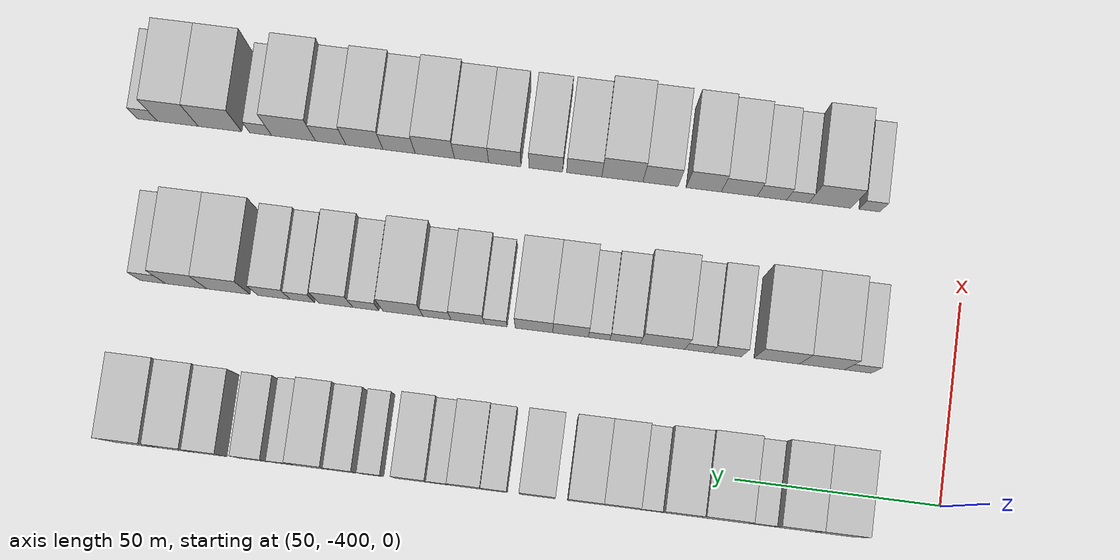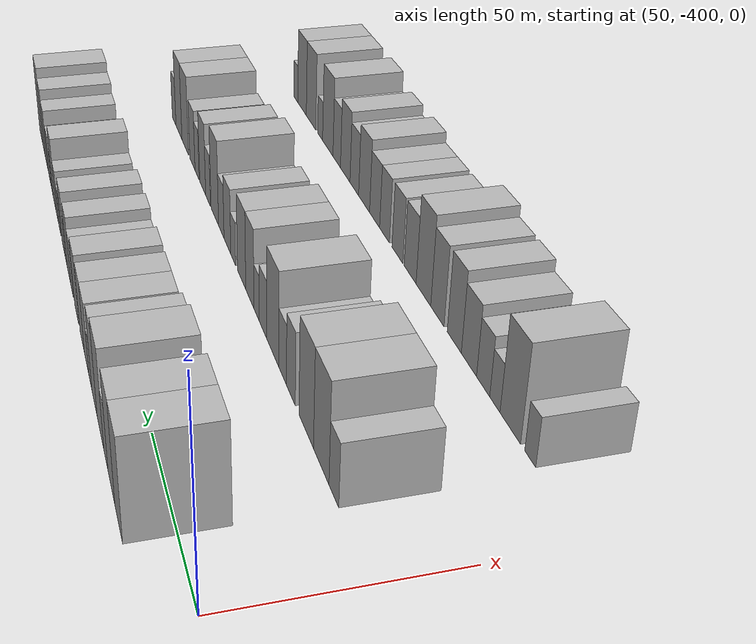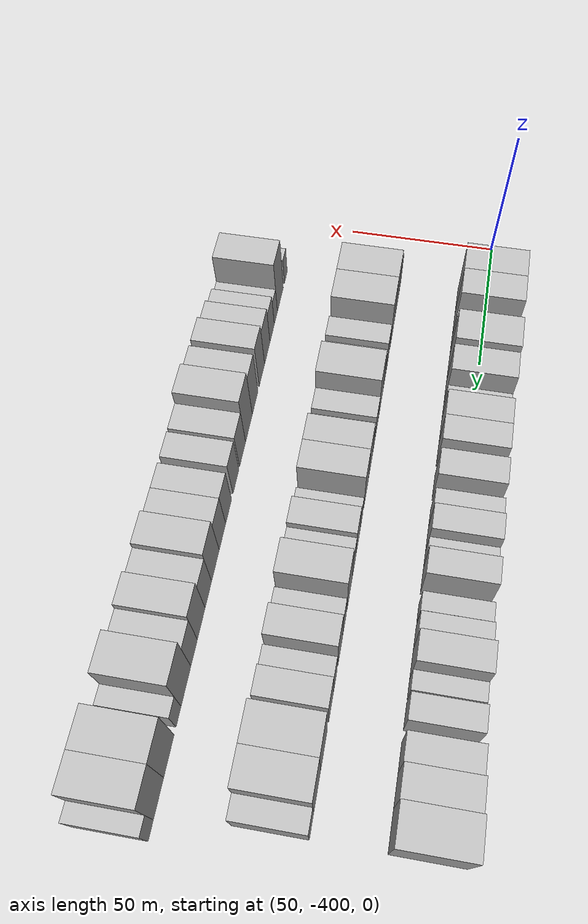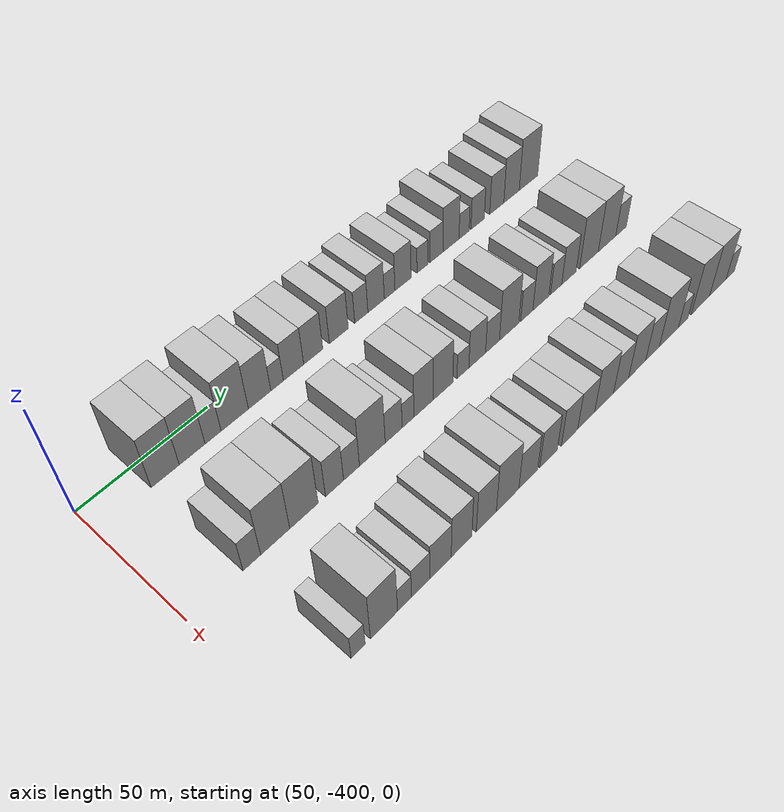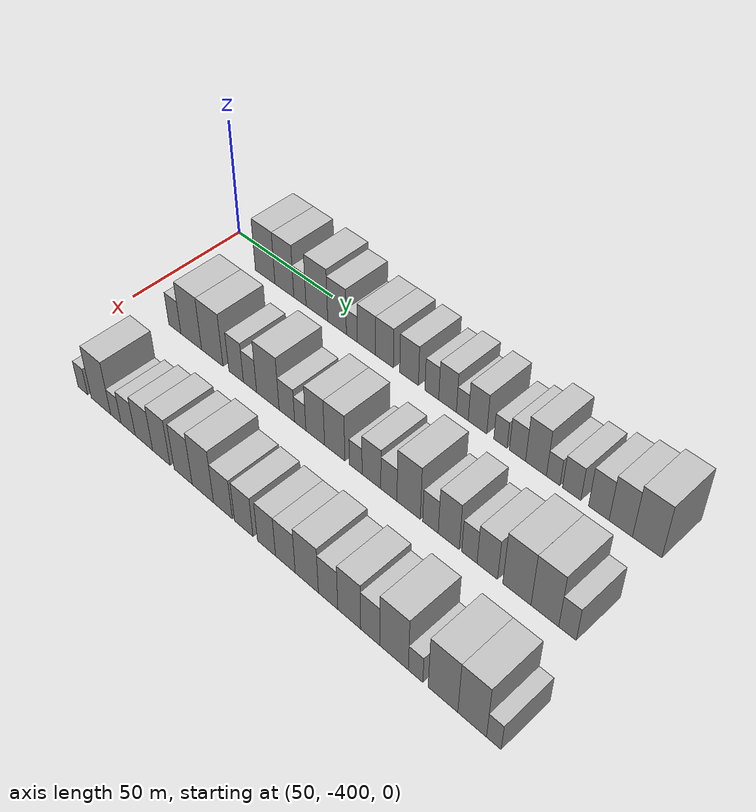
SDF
<sdf version="1.6">
 <world name="default">
  <model name="building_1">
   <static>1</static>
   <pose>50.0000 -374.7212 0 0.000000 0.000000 0.000000</pose>
   <link name="link">
    <pose>0 0 12.00 0 0 0</pose>
    <collision name="collision"><geometry><box><size>20.0000 10.5576 24.0000</size></box></geometry></collision>
    <visual name="visual">
     <cast_shadows>0</cast_shadows>
     <geometry><box><size>20.0000 10.5576 24.0000</size></box></geometry>
     <material>
      <script>
       <uri>model://HANNAS_wall/materials/scripts</uri>
       <uri>model://HANNAS_wall/materials/textures</uri>
       <name>vrc/HANNAS_wall</name>
      </script>
     </material>
    </visual>
   </link>
  </model>
  <model name="building_2">
   <static>1</static>
   <pose>50.0000 -364.4689 0 0.000000 0.000000 0.000000</pose>
   <link name="link">
    <pose>0 0 12.00 0 0 0</pose>
    <collision name="collision"><geometry><box><size>20.0000 9.9470 24.0000</size></box></geometry></collision>
    <visual name="visual">
     <cast_shadows>0</cast_shadows>
     <geometry><box><size>20.0000 9.9470 24.0000</size></box></geometry>
     <material>
      <script>
       <uri>model://HANNAS_wall/materials/scripts</uri>
       <uri>model://HANNAS_wall/materials/textures</uri>
       <name>vrc/HANNAS_wall</name>
      </script>
     </material>
    </visual>
   </link>
  </model>
  <model name="building_3">
   <static>1</static>
   <pose>50.0000 -356.3174 0 0.000000 0.000000 0.000000</pose>
   <link name="link">
    <pose>0 0 7.50 0 0 0</pose>
    <collision name="collision"><geometry><box><size>20.0000 6.3561 15.0000</size></box></geometry></collision>
    <visual name="visual">
     <cast_shadows>0</cast_shadows>
     <geometry><box><size>20.0000 6.3561 15.0000</size></box></geometry>
     <material>
      <script>
       <uri>model://HANNAS_wall/materials/scripts</uri>
       <uri>model://HANNAS_wall/materials/textures</uri>
       <name>vrc/HANNAS_wall</name>
      </script>
     </material>
    </visual>
   </link>
  </model>
  <model name="building_4">
   <static>1</static>
   <pose>50.0000 -347.6121 0 0.000000 0.000000 0.000000</pose>
   <link name="link">
    <pose>0 0 12.00 0 0 0</pose>
    <collision name="collision"><geometry><box><size>20.0000 11.0544 24.0000</size></box></geometry></collision>
    <visual name="visual">
     <cast_shadows>0</cast_shadows>
     <geometry><box><size>20.0000 11.0544 24.0000</size></box></geometry>
     <material>
      <script>
       <uri>model://HANNAS_wall/materials/scripts</uri>
       <uri>model://HANNAS_wall/materials/textures</uri>
       <name>vrc/HANNAS_wall</name>
      </script>
     </material>
    </visual>
   </link>
  </model>
  <model name="building_5">
   <static>1</static>
   <pose>50.0000 -337.4153 0 0.000000 0.000000 0.000000</pose>
   <link name="link">
    <pose>0 0 10.50 0 0 0</pose>
    <collision name="collision"><geometry><box><size>20.0000 9.3393 21.0000</size></box></geometry></collision>
    <visual name="visual">
     <cast_shadows>0</cast_shadows>
     <geometry><box><size>20.0000 9.3393 21.0000</size></box></geometry>
     <material>
      <script>
       <uri>model://HANNAS_wall/materials/scripts</uri>
       <uri>model://HANNAS_wall/materials/textures</uri>
       <name>vrc/HANNAS_wall</name>
      </script>
     </material>
    </visual>
   </link>
  </model>
  <model name="building_6">
   <static>1</static>
   <pose>50.0000 -330.0703 0 0.000000 0.000000 0.000000</pose>
   <link name="link">
    <pose>0 0 6.00 0 0 0</pose>
    <collision name="collision"><geometry><box><size>20.0000 5.3508 12.0000</size></box></geometry></collision>
    <visual name="visual">
     <cast_shadows>0</cast_shadows>
     <geometry><box><size>20.0000 5.3508 12.0000</size></box></geometry>
     <material>
      <script>
       <uri>model://HANNAS_wall/materials/scripts</uri>
       <uri>model://HANNAS_wall/materials/textures</uri>
       <name>vrc/HANNAS_wall</name>
      </script>
     </material>
    </visual>
   </link>
  </model>
  <model name="building_7">
   <static>1</static>
   <pose>50.0000 -323.0096 0 0.000000 0.000000 0.000000</pose>
   <link name="link">
    <pose>0 0 9.00 0 0 0</pose>
    <collision name="collision"><geometry><box><size>20.0000 8.7705 18.0000</size></box></geometry></collision>
    <visual name="visual">
     <cast_shadows>0</cast_shadows>
     <geometry><box><size>20.0000 8.7705 18.0000</size></box></geometry>
     <material>
      <script>
       <uri>model://HANNAS_wall/materials/scripts</uri>
       <uri>model://HANNAS_wall/materials/textures</uri>
       <name>vrc/HANNAS_wall</name>
      </script>
     </material>
    </visual>
   </link>
  </model>
  <model name="building_8">
   <static>1</static>
   <pose>50.0000 -314.3873 0 0.000000 0.000000 0.000000</pose>
   <link name="link">
    <pose>0 0 9.00 0 0 0</pose>
    <collision name="collision"><geometry><box><size>20.0000 8.4741 18.0000</size></box></geometry></collision>
    <visual name="visual">
     <cast_shadows>0</cast_shadows>
     <geometry><box><size>20.0000 8.4741 18.0000</size></box></geometry>
     <material>
      <script>
       <uri>model://HANNAS_wall/materials/scripts</uri>
       <uri>model://HANNAS_wall/materials/textures</uri>
       <name>vrc/HANNAS_wall</name>
      </script>
     </material>
    </visual>
   </link>
  </model>
  <model name="building_9">
   <static>1</static>
   <pose>50.0000 -302.8342 0 0.000000 0.000000 0.000000</pose>
   <link name="link">
    <pose>0 0 9.00 0 0 0</pose>
    <collision name="collision"><geometry><box><size>20.0000 8.6323 18.0000</size></box></geometry></collision>
    <visual name="visual">
     <cast_shadows>0</cast_shadows>
     <geometry><box><size>20.0000 8.6323 18.0000</size></box></geometry>
     <material>
      <script>
       <uri>model://HANNAS_wall/materials/scripts</uri>
       <uri>model://HANNAS_wall/materials/textures</uri>
       <name>vrc/HANNAS_wall</name>
      </script>
     </material>
    </visual>
   </link>
  </model>
  <model name="building_10">
   <static>1</static>
   <pose>50.0000 -292.4121 0 0.000000 0.000000 0.000000</pose>
   <link name="link">
    <pose>0 0 7.50 0 0 0</pose>
    <collision name="collision"><geometry><box><size>20.0000 6.2119 15.0000</size></box></geometry></collision>
    <visual name="visual">
     <cast_shadows>0</cast_shadows>
     <geometry><box><size>20.0000 6.2119 15.0000</size></box></geometry>
     <material>
      <script>
       <uri>model://HANNAS_wall/materials/scripts</uri>
       <uri>model://HANNAS_wall/materials/textures</uri>
       <name>vrc/HANNAS_wall</name>
      </script>
     </material>
    </visual>
   </link>
  </model>
  <model name="building_11">
   <static>1</static>
   <pose>50.0000 -285.3652 0 0.000000 0.000000 0.000000</pose>
   <link name="link">
    <pose>0 0 9.00 0 0 0</pose>
    <collision name="collision"><geometry><box><size>20.0000 7.8817 18.0000</size></box></geometry></collision>
    <visual name="visual">
     <cast_shadows>0</cast_shadows>
     <geometry><box><size>20.0000 7.8817 18.0000</size></box></geometry>
     <material>
      <script>
       <uri>model://HANNAS_wall/materials/scripts</uri>
       <uri>model://HANNAS_wall/materials/textures</uri>
       <name>vrc/HANNAS_wall</name>
      </script>
     </material>
    </visual>
   </link>
  </model>
  <model name="building_12">
   <static>1</static>
   <pose>50.0000 -278.8355 0 0.000000 0.000000 0.000000</pose>
   <link name="link">
    <pose>0 0 6.00 0 0 0</pose>
    <collision name="collision"><geometry><box><size>20.0000 5.1779 12.0000</size></box></geometry></collision>
    <visual name="visual">
     <cast_shadows>0</cast_shadows>
     <geometry><box><size>20.0000 5.1779 12.0000</size></box></geometry>
     <material>
      <script>
       <uri>model://HANNAS_wall/materials/scripts</uri>
       <uri>model://HANNAS_wall/materials/textures</uri>
       <name>vrc/HANNAS_wall</name>
      </script>
     </material>
    </visual>
   </link>
  </model>
  <model name="building_13">
   <static>1</static>
   <pose>50.0000 -272.2548 0 0.000000 0.000000 0.000000</pose>
   <link name="link">
    <pose>0 0 9.00 0 0 0</pose>
    <collision name="collision"><geometry><box><size>20.0000 7.9834 18.0000</size></box></geometry></collision>
    <visual name="visual">
     <cast_shadows>0</cast_shadows>
     <geometry><box><size>20.0000 7.9834 18.0000</size></box></geometry>
     <material>
      <script>
       <uri>model://HANNAS_wall/materials/scripts</uri>
       <uri>model://HANNAS_wall/materials/textures</uri>
       <name>vrc/HANNAS_wall</name>
      </script>
     </material>
    </visual>
   </link>
  </model>
  <model name="building_14">
   <static>1</static>
   <pose>50.0000 -262.4717 0 0.000000 0.000000 0.000000</pose>
   <link name="link">
    <pose>0 0 6.00 0 0 0</pose>
    <collision name="collision"><geometry><box><size>20.0000 5.5828 12.0000</size></box></geometry></collision>
    <visual name="visual">
     <cast_shadows>0</cast_shadows>
     <geometry><box><size>20.0000 5.5828 12.0000</size></box></geometry>
     <material>
      <script>
       <uri>model://HANNAS_wall/materials/scripts</uri>
       <uri>model://HANNAS_wall/materials/textures</uri>
       <name>vrc/HANNAS_wall</name>
      </script>
     </material>
    </visual>
   </link>
  </model>
  <model name="building_15">
   <static>1</static>
   <pose>50.0000 -255.3327 0 0.000000 0.000000 0.000000</pose>
   <link name="link">
    <pose>0 0 7.50 0 0 0</pose>
    <collision name="collision"><geometry><box><size>20.0000 6.6953 15.0000</size></box></geometry></collision>
    <visual name="visual">
     <cast_shadows>0</cast_shadows>
     <geometry><box><size>20.0000 6.6953 15.0000</size></box></geometry>
     <material>
      <script>
       <uri>model://HANNAS_wall/materials/scripts</uri>
       <uri>model://HANNAS_wall/materials/textures</uri>
       <name>vrc/HANNAS_wall</name>
      </script>
     </material>
    </visual>
   </link>
  </model>
  <model name="building_16">
   <static>1</static>
   <pose>50.0000 -247.7296 0 0.000000 0.000000 0.000000</pose>
   <link name="link">
    <pose>0 0 10.50 0 0 0</pose>
    <collision name="collision"><geometry><box><size>20.0000 8.5108 21.0000</size></box></geometry></collision>
    <visual name="visual">
     <cast_shadows>0</cast_shadows>
     <geometry><box><size>20.0000 8.5108 21.0000</size></box></geometry>
     <material>
      <script>
       <uri>model://HANNAS_wall/materials/scripts</uri>
       <uri>model://HANNAS_wall/materials/textures</uri>
       <name>vrc/HANNAS_wall</name>
      </script>
     </material>
    </visual>
   </link>
  </model>
  <model name="building_17">
   <static>1</static>
   <pose>50.0000 -240.7629 0 0.000000 0.000000 0.000000</pose>
   <link name="link">
    <pose>0 0 6.00 0 0 0</pose>
    <collision name="collision"><geometry><box><size>20.0000 5.4226 12.0000</size></box></geometry></collision>
    <visual name="visual">
     <cast_shadows>0</cast_shadows>
     <geometry><box><size>20.0000 5.4226 12.0000</size></box></geometry>
     <material>
      <script>
       <uri>model://HANNAS_wall/materials/scripts</uri>
       <uri>model://HANNAS_wall/materials/textures</uri>
       <name>vrc/HANNAS_wall</name>
      </script>
     </material>
    </visual>
   </link>
  </model>
  <model name="building_18">
   <static>1</static>
   <pose>50.0000 -233.4286 0 0.000000 0.000000 0.000000</pose>
   <link name="link">
    <pose>0 0 7.50 0 0 0</pose>
    <collision name="collision"><geometry><box><size>20.0000 7.2459 15.0000</size></box></geometry></collision>
    <visual name="visual">
     <cast_shadows>0</cast_shadows>
     <geometry><box><size>20.0000 7.2459 15.0000</size></box></geometry>
     <material>
      <script>
       <uri>model://HANNAS_wall/materials/scripts</uri>
       <uri>model://HANNAS_wall/materials/textures</uri>
       <name>vrc/HANNAS_wall</name>
      </script>
     </material>
    </visual>
   </link>
  </model>
  <model name="building_19">
   <static>1</static>
   <pose>50.0000 -222.8635 0 0.000000 0.000000 0.000000</pose>
   <link name="link">
    <pose>0 0 9.00 0 0 0</pose>
    <collision name="collision"><geometry><box><size>20.0000 7.8843 18.0000</size></box></geometry></collision>
    <visual name="visual">
     <cast_shadows>0</cast_shadows>
     <geometry><box><size>20.0000 7.8843 18.0000</size></box></geometry>
     <material>
      <script>
       <uri>model://HANNAS_wall/materials/scripts</uri>
       <uri>model://HANNAS_wall/materials/textures</uri>
       <name>vrc/HANNAS_wall</name>
      </script>
     </material>
    </visual>
   </link>
  </model>
  <model name="building_20">
   <static>1</static>
   <pose>50.0000 -214.5254 0 0.000000 0.000000 0.000000</pose>
   <link name="link">
    <pose>0 0 10.50 0 0 0</pose>
    <collision name="collision"><geometry><box><size>20.0000 8.7921 21.0000</size></box></geometry></collision>
    <visual name="visual">
     <cast_shadows>0</cast_shadows>
     <geometry><box><size>20.0000 8.7921 21.0000</size></box></geometry>
     <material>
      <script>
       <uri>model://HANNAS_wall/materials/scripts</uri>
       <uri>model://HANNAS_wall/materials/textures</uri>
       <name>vrc/HANNAS_wall</name>
      </script>
     </material>
    </visual>
   </link>
  </model>
  <model name="building_21">
   <static>1</static>
   <pose>50.0000 -204.7309 0 0.000000 0.000000 0.000000</pose>
   <link name="link">
    <pose>0 0 12.00 0 0 0</pose>
    <collision name="collision"><geometry><box><size>20.0000 10.7969 24.0000</size></box></geometry></collision>
    <visual name="visual">
     <cast_shadows>0</cast_shadows>
     <geometry><box><size>20.0000 10.7969 24.0000</size></box></geometry>
     <material>
      <script>
       <uri>model://HANNAS_wall/materials/scripts</uri>
       <uri>model://HANNAS_wall/materials/textures</uri>
       <name>vrc/HANNAS_wall</name>
      </script>
     </material>
    </visual>
   </link>
  </model>
  <model name="building_83">
   <static>1</static>
   <pose>90.0000 -376.7038 0 0.000000 0.000000 0.000000</pose>
   <link name="link">
    <pose>0 0 7.50 0 0 0</pose>
    <collision name="collision"><geometry><box><size>20.0000 6.5925 15.0000</size></box></geometry></collision>
    <visual name="visual">
     <cast_shadows>0</cast_shadows>
     <geometry><box><size>20.0000 6.5925 15.0000</size></box></geometry>
     <material>
      <script>
       <uri>model://HANNAS_wall/materials/scripts</uri>
       <uri>model://HANNAS_wall/materials/textures</uri>
       <name>vrc/HANNAS_wall</name>
      </script>
     </material>
    </visual>
   </link>
  </model>
  <model name="building_84">
   <static>1</static>
   <pose>90.0000 -367.8619 0 0.000000 0.000000 0.000000</pose>
   <link name="link">
    <pose>0 0 12.00 0 0 0</pose>
    <collision name="collision"><geometry><box><size>20.0000 11.0912 24.0000</size></box></geometry></collision>
    <visual name="visual">
     <cast_shadows>0</cast_shadows>
     <geometry><box><size>20.0000 11.0912 24.0000</size></box></geometry>
     <material>
      <script>
       <uri>model://HANNAS_wall/materials/scripts</uri>
       <uri>model://HANNAS_wall/materials/textures</uri>
       <name>vrc/HANNAS_wall</name>
      </script>
     </material>
    </visual>
   </link>
  </model>
  <model name="building_85">
   <static>1</static>
   <pose>90.0000 -356.7157 0 0.000000 0.000000 0.000000</pose>
   <link name="link">
    <pose>0 0 12.00 0 0 0</pose>
    <collision name="collision"><geometry><box><size>20.0000 11.2013 24.0000</size></box></geometry></collision>
    <visual name="visual">
     <cast_shadows>0</cast_shadows>
     <geometry><box><size>20.0000 11.2013 24.0000</size></box></geometry>
     <material>
      <script>
       <uri>model://HANNAS_wall/materials/scripts</uri>
       <uri>model://HANNAS_wall/materials/textures</uri>
       <name>vrc/HANNAS_wall</name>
      </script>
     </material>
    </visual>
   </link>
  </model>
  <model name="building_86">
   <static>1</static>
   <pose>90.0000 -344.4115 0 0.000000 0.000000 0.000000</pose>
   <link name="link">
    <pose>0 0 9.00 0 0 0</pose>
    <collision name="collision"><geometry><box><size>20.0000 7.4070 18.0000</size></box></geometry></collision>
    <visual name="visual">
     <cast_shadows>0</cast_shadows>
     <geometry><box><size>20.0000 7.4070 18.0000</size></box></geometry>
     <material>
      <script>
       <uri>model://HANNAS_wall/materials/scripts</uri>
       <uri>model://HANNAS_wall/materials/textures</uri>
       <name>vrc/HANNAS_wall</name>
      </script>
     </material>
    </visual>
   </link>
  </model>
  <model name="building_87">
   <static>1</static>
   <pose>90.0000 -337.3989 0 0.000000 0.000000 0.000000</pose>
   <link name="link">
    <pose>0 0 7.50 0 0 0</pose>
    <collision name="collision"><geometry><box><size>20.0000 6.6182 15.0000</size></box></geometry></collision>
    <visual name="visual">
     <cast_shadows>0</cast_shadows>
     <geometry><box><size>20.0000 6.6182 15.0000</size></box></geometry>
     <material>
      <script>
       <uri>model://HANNAS_wall/materials/scripts</uri>
       <uri>model://HANNAS_wall/materials/textures</uri>
       <name>vrc/HANNAS_wall</name>
      </script>
     </material>
    </visual>
   </link>
  </model>
  <model name="building_88">
   <static>1</static>
   <pose>90.0000 -328.5657 0 0.000000 0.000000 0.000000</pose>
   <link name="link">
    <pose>0 0 12.00 0 0 0</pose>
    <collision name="collision"><geometry><box><size>20.0000 11.0482 24.0000</size></box></geometry></collision>
    <visual name="visual">
     <cast_shadows>0</cast_shadows>
     <geometry><box><size>20.0000 11.0482 24.0000</size></box></geometry>
     <material>
      <script>
       <uri>model://HANNAS_wall/materials/scripts</uri>
       <uri>model://HANNAS_wall/materials/textures</uri>
       <name>vrc/HANNAS_wall</name>
      </script>
     </material>
    </visual>
   </link>
  </model>
  <model name="building_89">
   <static>1</static>
   <pose>90.0000 -319.3100 0 0.000000 0.000000 0.000000</pose>
   <link name="link">
    <pose>0 0 7.50 0 0 0</pose>
    <collision name="collision"><geometry><box><size>20.0000 7.4633 15.0000</size></box></geometry></collision>
    <visual name="visual">
     <cast_shadows>0</cast_shadows>
     <geometry><box><size>20.0000 7.4633 15.0000</size></box></geometry>
     <material>
      <script>
       <uri>model://HANNAS_wall/materials/scripts</uri>
       <uri>model://HANNAS_wall/materials/textures</uri>
       <name>vrc/HANNAS_wall</name>
      </script>
     </material>
    </visual>
   </link>
  </model>
  <model name="building_90">
   <static>1</static>
   <pose>90.0000 -312.9139 0 0.000000 0.000000 0.000000</pose>
   <link name="link">
    <pose>0 0 6.00 0 0 0</pose>
    <collision name="collision"><geometry><box><size>20.0000 5.3290 12.0000</size></box></geometry></collision>
    <visual name="visual">
     <cast_shadows>0</cast_shadows>
     <geometry><box><size>20.0000 5.3290 12.0000</size></box></geometry>
     <material>
      <script>
       <uri>model://HANNAS_wall/materials/scripts</uri>
       <uri>model://HANNAS_wall/materials/textures</uri>
       <name>vrc/HANNAS_wall</name>
      </script>
     </material>
    </visual>
   </link>
  </model>
  <model name="building_91">
   <static>1</static>
   <pose>90.0000 -305.8913 0 0.000000 0.000000 0.000000</pose>
   <link name="link">
    <pose>0 0 10.50 0 0 0</pose>
    <collision name="collision"><geometry><box><size>20.0000 8.7160 21.0000</size></box></geometry></collision>
    <visual name="visual">
     <cast_shadows>0</cast_shadows>
     <geometry><box><size>20.0000 8.7160 21.0000</size></box></geometry>
     <material>
      <script>
       <uri>model://HANNAS_wall/materials/scripts</uri>
       <uri>model://HANNAS_wall/materials/textures</uri>
       <name>vrc/HANNAS_wall</name>
      </script>
     </material>
    </visual>
   </link>
  </model>
  <model name="building_92">
   <static>1</static>
   <pose>90.0000 -296.8996 0 0.000000 0.000000 0.000000</pose>
   <link name="link">
    <pose>0 0 10.50 0 0 0</pose>
    <collision name="collision"><geometry><box><size>20.0000 9.2675 21.0000</size></box></geometry></collision>
    <visual name="visual">
     <cast_shadows>0</cast_shadows>
     <geometry><box><size>20.0000 9.2675 21.0000</size></box></geometry>
     <material>
      <script>
       <uri>model://HANNAS_wall/materials/scripts</uri>
       <uri>model://HANNAS_wall/materials/textures</uri>
       <name>vrc/HANNAS_wall</name>
      </script>
     </material>
    </visual>
   </link>
  </model>
  <model name="building_93">
   <static>1</static>
   <pose>90.0000 -287.4274 0 0.000000 0.000000 0.000000</pose>
   <link name="link">
    <pose>0 0 6.00 0 0 0</pose>
    <collision name="collision"><geometry><box><size>20.0000 5.6769 12.0000</size></box></geometry></collision>
    <visual name="visual">
     <cast_shadows>0</cast_shadows>
     <geometry><box><size>20.0000 5.6769 12.0000</size></box></geometry>
     <material>
      <script>
       <uri>model://HANNAS_wall/materials/scripts</uri>
       <uri>model://HANNAS_wall/materials/textures</uri>
       <name>vrc/HANNAS_wall</name>
      </script>
     </material>
    </visual>
   </link>
  </model>
  <model name="building_94">
   <static>1</static>
   <pose>90.0000 -280.4839 0 0.000000 0.000000 0.000000</pose>
   <link name="link">
    <pose>0 0 9.00 0 0 0</pose>
    <collision name="collision"><geometry><box><size>20.0000 8.2099 18.0000</size></box></geometry></collision>
    <visual name="visual">
     <cast_shadows>0</cast_shadows>
     <geometry><box><size>20.0000 8.2099 18.0000</size></box></geometry>
     <material>
      <script>
       <uri>model://HANNAS_wall/materials/scripts</uri>
       <uri>model://HANNAS_wall/materials/textures</uri>
       <name>vrc/HANNAS_wall</name>
      </script>
     </material>
    </visual>
   </link>
  </model>
  <model name="building_95">
   <static>1</static>
   <pose>90.0000 -272.9219 0 0.000000 0.000000 0.000000</pose>
   <link name="link">
    <pose>0 0 7.50 0 0 0</pose>
    <collision name="collision"><geometry><box><size>20.0000 6.9142 15.0000</size></box></geometry></collision>
    <visual name="visual">
     <cast_shadows>0</cast_shadows>
     <geometry><box><size>20.0000 6.9142 15.0000</size></box></geometry>
     <material>
      <script>
       <uri>model://HANNAS_wall/materials/scripts</uri>
       <uri>model://HANNAS_wall/materials/textures</uri>
       <name>vrc/HANNAS_wall</name>
      </script>
     </material>
    </visual>
   </link>
  </model>
  <model name="building_96">
   <static>1</static>
   <pose>90.0000 -264.5238 0 0.000000 0.000000 0.000000</pose>
   <link name="link">
    <pose>0 0 12.00 0 0 0</pose>
    <collision name="collision"><geometry><box><size>20.0000 9.8819 24.0000</size></box></geometry></collision>
    <visual name="visual">
     <cast_shadows>0</cast_shadows>
     <geometry><box><size>20.0000 9.8819 24.0000</size></box></geometry>
     <material>
      <script>
       <uri>model://HANNAS_wall/materials/scripts</uri>
       <uri>model://HANNAS_wall/materials/textures</uri>
       <name>vrc/HANNAS_wall</name>
      </script>
     </material>
    </visual>
   </link>
  </model>
  <model name="building_97">
   <static>1</static>
   <pose>90.0000 -255.3694 0 0.000000 0.000000 0.000000</pose>
   <link name="link">
    <pose>0 0 7.50 0 0 0</pose>
    <collision name="collision"><geometry><box><size>20.0000 6.4269 15.0000</size></box></geometry></collision>
    <visual name="visual">
     <cast_shadows>0</cast_shadows>
     <geometry><box><size>20.0000 6.4269 15.0000</size></box></geometry>
     <material>
      <script>
       <uri>model://HANNAS_wall/materials/scripts</uri>
       <uri>model://HANNAS_wall/materials/textures</uri>
       <name>vrc/HANNAS_wall</name>
      </script>
     </material>
    </visual>
   </link>
  </model>
  <model name="building_98">
   <static>1</static>
   <pose>90.0000 -247.9005 0 0.000000 0.000000 0.000000</pose>
   <link name="link">
    <pose>0 0 10.50 0 0 0</pose>
    <collision name="collision"><geometry><box><size>20.0000 8.5109 21.0000</size></box></geometry></collision>
    <visual name="visual">
     <cast_shadows>0</cast_shadows>
     <geometry><box><size>20.0000 8.5109 21.0000</size></box></geometry>
     <material>
      <script>
       <uri>model://HANNAS_wall/materials/scripts</uri>
       <uri>model://HANNAS_wall/materials/textures</uri>
       <name>vrc/HANNAS_wall</name>
      </script>
     </material>
    </visual>
   </link>
  </model>
  <model name="building_99">
   <static>1</static>
   <pose>90.0000 -239.6155 0 0.000000 0.000000 0.000000</pose>
   <link name="link">
    <pose>0 0 7.50 0 0 0</pose>
    <collision name="collision"><geometry><box><size>20.0000 6.0591 15.0000</size></box></geometry></collision>
    <visual name="visual">
     <cast_shadows>0</cast_shadows>
     <geometry><box><size>20.0000 6.0591 15.0000</size></box></geometry>
     <material>
      <script>
       <uri>model://HANNAS_wall/materials/scripts</uri>
       <uri>model://HANNAS_wall/materials/textures</uri>
       <name>vrc/HANNAS_wall</name>
      </script>
     </material>
    </visual>
   </link>
  </model>
  <model name="building_100">
   <static>1</static>
   <pose>90.0000 -232.5797 0 0.000000 0.000000 0.000000</pose>
   <link name="link">
    <pose>0 0 9.00 0 0 0</pose>
    <collision name="collision"><geometry><box><size>20.0000 8.0126 18.0000</size></box></geometry></collision>
    <visual name="visual">
     <cast_shadows>0</cast_shadows>
     <geometry><box><size>20.0000 8.0126 18.0000</size></box></geometry>
     <material>
      <script>
       <uri>model://HANNAS_wall/materials/scripts</uri>
       <uri>model://HANNAS_wall/materials/textures</uri>
       <name>vrc/HANNAS_wall</name>
      </script>
     </material>
    </visual>
   </link>
  </model>
  <model name="building_101">
   <static>1</static>
   <pose>90.0000 -221.2254 0 0.000000 0.000000 0.000000</pose>
   <link name="link">
    <pose>0 0 12.00 0 0 0</pose>
    <collision name="collision"><geometry><box><size>20.0000 10.6960 24.0000</size></box></geometry></collision>
    <visual name="visual">
     <cast_shadows>0</cast_shadows>
     <geometry><box><size>20.0000 10.6960 24.0000</size></box></geometry>
     <material>
      <script>
       <uri>model://HANNAS_wall/materials/scripts</uri>
       <uri>model://HANNAS_wall/materials/textures</uri>
       <name>vrc/HANNAS_wall</name>
      </script>
     </material>
    </visual>
   </link>
  </model>
  <model name="building_102">
   <static>1</static>
   <pose>90.0000 -210.7596 0 0.000000 0.000000 0.000000</pose>
   <link name="link">
    <pose>0 0 12.00 0 0 0</pose>
    <collision name="collision"><geometry><box><size>20.0000 10.2355 24.0000</size></box></geometry></collision>
    <visual name="visual">
     <cast_shadows>0</cast_shadows>
     <geometry><box><size>20.0000 10.2355 24.0000</size></box></geometry>
     <material>
      <script>
       <uri>model://HANNAS_wall/materials/scripts</uri>
       <uri>model://HANNAS_wall/materials/textures</uri>
       <name>vrc/HANNAS_wall</name>
      </script>
     </material>
    </visual>
   </link>
  </model>
  <model name="building_103">
   <static>1</static>
   <pose>90.0000 -202.4698 0 0.000000 0.000000 0.000000</pose>
   <link name="link">
    <pose>0 0 7.50 0 0 0</pose>
    <collision name="collision"><geometry><box><size>20.0000 6.3442 15.0000</size></box></geometry></collision>
    <visual name="visual">
     <cast_shadows>0</cast_shadows>
     <geometry><box><size>20.0000 6.3442 15.0000</size></box></geometry>
     <material>
      <script>
       <uri>model://HANNAS_wall/materials/scripts</uri>
       <uri>model://HANNAS_wall/materials/textures</uri>
       <name>vrc/HANNAS_wall</name>
      </script>
     </material>
    </visual>
   </link>
  </model>
  <model name="building_170">
   <static>1</static>
   <pose>130.0000 -375.3757 0 0.000000 0.000000 0.000000</pose>
   <link name="link">
    <pose>0 0 6.00 0 0 0</pose>
    <collision name="collision"><geometry><box><size>20.0000 5.2486 12.0000</size></box></geometry></collision>
    <visual name="visual">
     <cast_shadows>0</cast_shadows>
     <geometry><box><size>20.0000 5.2486 12.0000</size></box></geometry>
     <material>
      <script>
       <uri>model://HANNAS_wall/materials/scripts</uri>
       <uri>model://HANNAS_wall/materials/textures</uri>
       <name>vrc/HANNAS_wall</name>
      </script>
     </material>
    </visual>
   </link>
  </model>
  <model name="building_171">
   <static>1</static>
   <pose>130.0000 -365.5110 0 0.000000 0.000000 0.000000</pose>
   <link name="link">
    <pose>0 0 12.00 0 0 0</pose>
    <collision name="collision"><geometry><box><size>20.0000 10.4809 24.0000</size></box></geometry></collision>
    <visual name="visual">
     <cast_shadows>0</cast_shadows>
     <geometry><box><size>20.0000 10.4809 24.0000</size></box></geometry>
     <material>
      <script>
       <uri>model://HANNAS_wall/materials/scripts</uri>
       <uri>model://HANNAS_wall/materials/textures</uri>
       <name>vrc/HANNAS_wall</name>
      </script>
     </material>
    </visual>
   </link>
  </model>
  <model name="building_172">
   <static>1</static>
   <pose>130.0000 -357.5172 0 0.000000 0.000000 0.000000</pose>
   <link name="link">
    <pose>0 0 6.00 0 0 0</pose>
    <collision name="collision"><geometry><box><size>20.0000 5.5066 12.0000</size></box></geometry></collision>
    <visual name="visual">
     <cast_shadows>0</cast_shadows>
     <geometry><box><size>20.0000 5.5066 12.0000</size></box></geometry>
     <material>
      <script>
       <uri>model://HANNAS_wall/materials/scripts</uri>
       <uri>model://HANNAS_wall/materials/textures</uri>
       <name>vrc/HANNAS_wall</name>
      </script>
     </material>
    </visual>
   </link>
  </model>
  <model name="building_173">
   <static>1</static>
   <pose>130.0000 -351.0873 0 0.000000 0.000000 0.000000</pose>
   <link name="link">
    <pose>0 0 7.50 0 0 0</pose>
    <collision name="collision"><geometry><box><size>20.0000 7.3533 15.0000</size></box></geometry></collision>
    <visual name="visual">
     <cast_shadows>0</cast_shadows>
     <geometry><box><size>20.0000 7.3533 15.0000</size></box></geometry>
     <material>
      <script>
       <uri>model://HANNAS_wall/materials/scripts</uri>
       <uri>model://HANNAS_wall/materials/textures</uri>
       <name>vrc/HANNAS_wall</name>
      </script>
     </material>
    </visual>
   </link>
  </model>
  <model name="building_174">
   <static>1</static>
   <pose>130.0000 -342.9448 0 0.000000 0.000000 0.000000</pose>
   <link name="link">
    <pose>0 0 9.00 0 0 0</pose>
    <collision name="collision"><geometry><box><size>20.0000 8.9317 18.0000</size></box></geometry></collision>
    <visual name="visual">
     <cast_shadows>0</cast_shadows>
     <geometry><box><size>20.0000 8.9317 18.0000</size></box></geometry>
     <material>
      <script>
       <uri>model://HANNAS_wall/materials/scripts</uri>
       <uri>model://HANNAS_wall/materials/textures</uri>
       <name>vrc/HANNAS_wall</name>
      </script>
     </material>
    </visual>
   </link>
  </model>
  <model name="building_175">
   <static>1</static>
   <pose>130.0000 -334.1024 0 0.000000 0.000000 0.000000</pose>
   <link name="link">
    <pose>0 0 10.50 0 0 0</pose>
    <collision name="collision"><geometry><box><size>20.0000 8.7532 21.0000</size></box></geometry></collision>
    <visual name="visual">
     <cast_shadows>0</cast_shadows>
     <geometry><box><size>20.0000 8.7532 21.0000</size></box></geometry>
     <material>
      <script>
       <uri>model://HANNAS_wall/materials/scripts</uri>
       <uri>model://HANNAS_wall/materials/textures</uri>
       <name>vrc/HANNAS_wall</name>
      </script>
     </material>
    </visual>
   </link>
  </model>
  <model name="building_176">
   <static>1</static>
   <pose>130.0000 -323.3230 0 0.000000 0.000000 0.000000</pose>
   <link name="link">
    <pose>0 0 10.50 0 0 0</pose>
    <collision name="collision"><geometry><box><size>20.0000 8.8055 21.0000</size></box></geometry></collision>
    <visual name="visual">
     <cast_shadows>0</cast_shadows>
     <geometry><box><size>20.0000 8.8055 21.0000</size></box></geometry>
     <material>
      <script>
       <uri>model://HANNAS_wall/materials/scripts</uri>
       <uri>model://HANNAS_wall/materials/textures</uri>
       <name>vrc/HANNAS_wall</name>
      </script>
     </material>
    </visual>
   </link>
  </model>
  <model name="building_177">
   <static>1</static>
   <pose>130.0000 -313.8037 0 0.000000 0.000000 0.000000</pose>
   <link name="link">
    <pose>0 0 12.00 0 0 0</pose>
    <collision name="collision"><geometry><box><size>20.0000 10.2331 24.0000</size></box></geometry></collision>
    <visual name="visual">
     <cast_shadows>0</cast_shadows>
     <geometry><box><size>20.0000 10.2331 24.0000</size></box></geometry>
     <material>
      <script>
       <uri>model://HANNAS_wall/materials/scripts</uri>
       <uri>model://HANNAS_wall/materials/textures</uri>
       <name>vrc/HANNAS_wall</name>
      </script>
     </material>
    </visual>
   </link>
  </model>
  <model name="building_178">
   <static>1</static>
   <pose>130.0000 -304.3002 0 0.000000 0.000000 0.000000</pose>
   <link name="link">
    <pose>0 0 9.00 0 0 0</pose>
    <collision name="collision"><geometry><box><size>20.0000 8.7739 18.0000</size></box></geometry></collision>
    <visual name="visual">
     <cast_shadows>0</cast_shadows>
     <geometry><box><size>20.0000 8.7739 18.0000</size></box></geometry>
     <material>
      <script>
       <uri>model://HANNAS_wall/materials/scripts</uri>
       <uri>model://HANNAS_wall/materials/textures</uri>
       <name>vrc/HANNAS_wall</name>
      </script>
     </material>
    </visual>
   </link>
  </model>
  <model name="building_179">
   <static>1</static>
   <pose>130.0000 -294.7089 0 0.000000 0.000000 0.000000</pose>
   <link name="link">
    <pose>0 0 9.00 0 0 0</pose>
    <collision name="collision"><geometry><box><size>20.0000 8.4086 18.0000</size></box></geometry></collision>
    <visual name="visual">
     <cast_shadows>0</cast_shadows>
     <geometry><box><size>20.0000 8.4086 18.0000</size></box></geometry>
     <material>
      <script>
       <uri>model://HANNAS_wall/materials/scripts</uri>
       <uri>model://HANNAS_wall/materials/textures</uri>
       <name>vrc/HANNAS_wall</name>
      </script>
     </material>
    </visual>
   </link>
  </model>
  <model name="building_180">
   <static>1</static>
   <pose>130.0000 -284.4786 0 0.000000 0.000000 0.000000</pose>
   <link name="link">
    <pose>0 0 9.00 0 0 0</pose>
    <collision name="collision"><geometry><box><size>20.0000 8.0521 18.0000</size></box></geometry></collision>
    <visual name="visual">
     <cast_shadows>0</cast_shadows>
     <geometry><box><size>20.0000 8.0521 18.0000</size></box></geometry>
     <material>
      <script>
       <uri>model://HANNAS_wall/materials/scripts</uri>
       <uri>model://HANNAS_wall/materials/textures</uri>
       <name>vrc/HANNAS_wall</name>
      </script>
     </material>
    </visual>
   </link>
  </model>
  <model name="building_181">
   <static>1</static>
   <pose>130.0000 -276.1684 0 0.000000 0.000000 0.000000</pose>
   <link name="link">
    <pose>0 0 9.00 0 0 0</pose>
    <collision name="collision"><geometry><box><size>20.0000 8.5683 18.0000</size></box></geometry></collision>
    <visual name="visual">
     <cast_shadows>0</cast_shadows>
     <geometry><box><size>20.0000 8.5683 18.0000</size></box></geometry>
     <material>
      <script>
       <uri>model://HANNAS_wall/materials/scripts</uri>
       <uri>model://HANNAS_wall/materials/textures</uri>
       <name>vrc/HANNAS_wall</name>
      </script>
     </material>
    </visual>
   </link>
  </model>
  <model name="building_182">
   <static>1</static>
   <pose>130.0000 -266.9662 0 0.000000 0.000000 0.000000</pose>
   <link name="link">
    <pose>0 0 10.50 0 0 0</pose>
    <collision name="collision"><geometry><box><size>20.0000 9.8361 21.0000</size></box></geometry></collision>
    <visual name="visual">
     <cast_shadows>0</cast_shadows>
     <geometry><box><size>20.0000 9.8361 21.0000</size></box></geometry>
     <material>
      <script>
       <uri>model://HANNAS_wall/materials/scripts</uri>
       <uri>model://HANNAS_wall/materials/textures</uri>
       <name>vrc/HANNAS_wall</name>
      </script>
     </material>
    </visual>
   </link>
  </model>
  <model name="building_183">
   <static>1</static>
   <pose>130.0000 -258.0129 0 0.000000 0.000000 0.000000</pose>
   <link name="link">
    <pose>0 0 9.00 0 0 0</pose>
    <collision name="collision"><geometry><box><size>20.0000 8.0705 18.0000</size></box></geometry></collision>
    <visual name="visual">
     <cast_shadows>0</cast_shadows>
     <geometry><box><size>20.0000 8.0705 18.0000</size></box></geometry>
     <material>
      <script>
       <uri>model://HANNAS_wall/materials/scripts</uri>
       <uri>model://HANNAS_wall/materials/textures</uri>
       <name>vrc/HANNAS_wall</name>
      </script>
     </material>
    </visual>
   </link>
  </model>
  <model name="building_184">
   <static>1</static>
   <pose>130.0000 -249.3374 0 0.000000 0.000000 0.000000</pose>
   <link name="link">
    <pose>0 0 10.50 0 0 0</pose>
    <collision name="collision"><geometry><box><size>20.0000 9.2805 21.0000</size></box></geometry></collision>
    <visual name="visual">
     <cast_shadows>0</cast_shadows>
     <geometry><box><size>20.0000 9.2805 21.0000</size></box></geometry>
     <material>
      <script>
       <uri>model://HANNAS_wall/materials/scripts</uri>
       <uri>model://HANNAS_wall/materials/textures</uri>
       <name>vrc/HANNAS_wall</name>
      </script>
     </material>
    </visual>
   </link>
  </model>
  <model name="building_185">
   <static>1</static>
   <pose>130.0000 -240.8885 0 0.000000 0.000000 0.000000</pose>
   <link name="link">
    <pose>0 0 9.00 0 0 0</pose>
    <collision name="collision"><geometry><box><size>20.0000 7.6175 18.0000</size></box></geometry></collision>
    <visual name="visual">
     <cast_shadows>0</cast_shadows>
     <geometry><box><size>20.0000 7.6175 18.0000</size></box></geometry>
     <material>
      <script>
       <uri>model://HANNAS_wall/materials/scripts</uri>
       <uri>model://HANNAS_wall/materials/textures</uri>
       <name>vrc/HANNAS_wall</name>
      </script>
     </material>
    </visual>
   </link>
  </model>
  <model name="building_186">
   <static>1</static>
   <pose>130.0000 -231.5677 0 0.000000 0.000000 0.000000</pose>
   <link name="link">
    <pose>0 0 12.00 0 0 0</pose>
    <collision name="collision"><geometry><box><size>20.0000 11.0241 24.0000</size></box></geometry></collision>
    <visual name="visual">
     <cast_shadows>0</cast_shadows>
     <geometry><box><size>20.0000 11.0241 24.0000</size></box></geometry>
     <material>
      <script>
       <uri>model://HANNAS_wall/materials/scripts</uri>
       <uri>model://HANNAS_wall/materials/textures</uri>
       <name>vrc/HANNAS_wall</name>
      </script>
     </material>
    </visual>
   </link>
  </model>
  <model name="building_187">
   <static>1</static>
   <pose>130.0000 -223.3065 0 0.000000 0.000000 0.000000</pose>
   <link name="link">
    <pose>0 0 6.00 0 0 0</pose>
    <collision name="collision"><geometry><box><size>20.0000 5.4981 12.0000</size></box></geometry></collision>
    <visual name="visual">
     <cast_shadows>0</cast_shadows>
     <geometry><box><size>20.0000 5.4981 12.0000</size></box></geometry>
     <material>
      <script>
       <uri>model://HANNAS_wall/materials/scripts</uri>
       <uri>model://HANNAS_wall/materials/textures</uri>
       <name>vrc/HANNAS_wall</name>
      </script>
     </material>
    </visual>
   </link>
  </model>
  <model name="building_188">
   <static>1</static>
   <pose>130.0000 -213.0933 0 0.000000 0.000000 0.000000</pose>
   <link name="link">
    <pose>0 0 12.00 0 0 0</pose>
    <collision name="collision"><geometry><box><size>20.0000 10.9284 24.0000</size></box></geometry></collision>
    <visual name="visual">
     <cast_shadows>0</cast_shadows>
     <geometry><box><size>20.0000 10.9284 24.0000</size></box></geometry>
     <material>
      <script>
       <uri>model://HANNAS_wall/materials/scripts</uri>
       <uri>model://HANNAS_wall/materials/textures</uri>
       <name>vrc/HANNAS_wall</name>
      </script>
     </material>
    </visual>
   </link>
  </model>
  <model name="building_189">
   <static>1</static>
   <pose>130.0000 -202.4989 0 0.000000 0.000000 0.000000</pose>
   <link name="link">
    <pose>0 0 12.00 0 0 0</pose>
    <collision name="collision"><geometry><box><size>20.0000 10.2604 24.0000</size></box></geometry></collision>
    <visual name="visual">
     <cast_shadows>0</cast_shadows>
     <geometry><box><size>20.0000 10.2604 24.0000</size></box></geometry>
     <material>
      <script>
       <uri>model://HANNAS_wall/materials/scripts</uri>
       <uri>model://HANNAS_wall/materials/textures</uri>
       <name>vrc/HANNAS_wall</name>
      </script>
     </material>
    </visual>
   </link>
  </model>
  <model name="building_190">
   <static>1</static>
   <pose>130.0000 -194.7921 0 0.000000 0.000000 0.000000</pose>
   <link name="link">
    <pose>0 0 6.00 0 0 0</pose>
    <collision name="collision"><geometry><box><size>20.0000 5.1533 12.0000</size></box></geometry></collision>
    <visual name="visual">
     <cast_shadows>0</cast_shadows>
     <geometry><box><size>20.0000 5.1533 12.0000</size></box></geometry>
     <material>
      <script>
       <uri>model://HANNAS_wall/materials/scripts</uri>
       <uri>model://HANNAS_wall/materials/textures</uri>
       <name>vrc/HANNAS_wall</name>
      </script>
     </material>
    </visual>
   </link>
  </model>
 </world>
</sdf>
